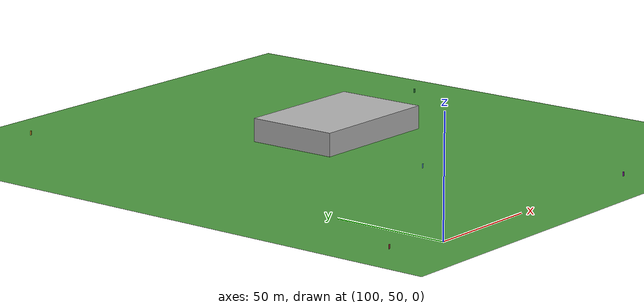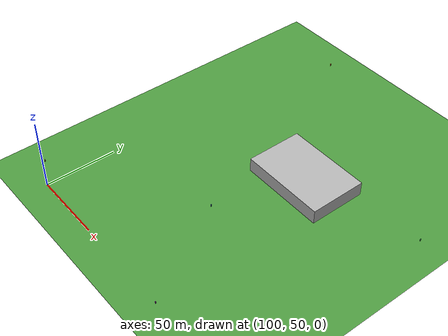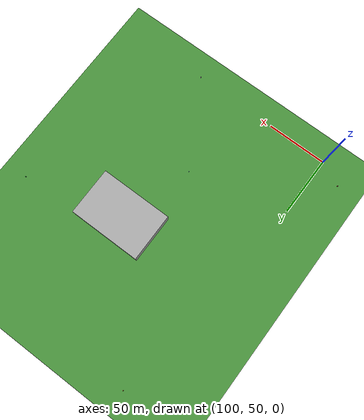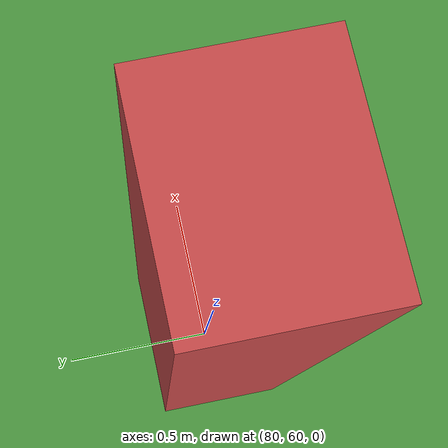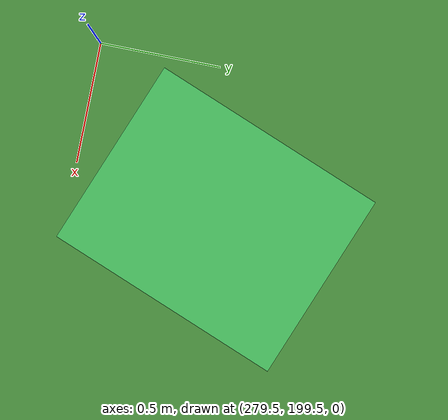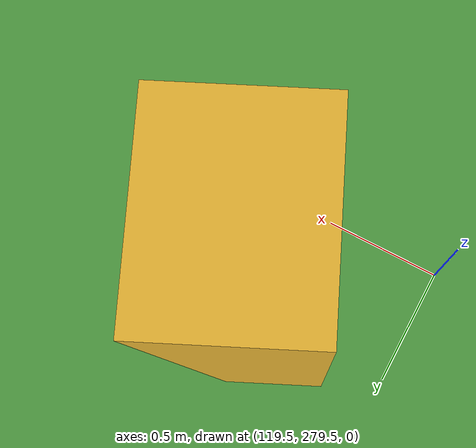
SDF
<?xml version="1.0" ?>
<sdf version="1.6">
  <world name="iiti_sar">

    <!-- ── Physics ── -->
    <physics type="ode">
      <real_time_update_rate>1000</real_time_update_rate>
      <max_step_size>0.001</max_step_size>
      <real_time_factor>1</real_time_factor>
    </physics>

    <!-- ── Lighting (Indore noon, June) ── -->
    <light name="sun" type="directional">
      <cast_shadows>true</cast_shadows>
      <pose>0 0 500 0 0 0</pose>
      <!-- Indore latitude ~22.5° N; solar altitude ~88° at noon June -->
      <direction>0.1 0.1 -1</direction>
      <diffuse>0.9 0.9 0.85 1</diffuse>
      <specular>0.2 0.2 0.2 1</specular>
    </light>

    <!-- ── Ground plane (400 m × 400 m, origin at SW corner) ── -->
    <model name="ground_plane">
      <static>true</static>
      <link name="link">
        <collision name="collision">
          <geometry>
            <plane>
              <normal>0 0 1</normal>
              <size>600 600</size>
            </plane>
          </geometry>
          <surface>
            <friction><ode><mu>100</mu><mu2>50</mu2></ode></friction>
          </surface>
        </collision>
        <visual name="visual">
          <cast_shadows>false</cast_shadows>
          <geometry>
            <plane>
              <normal>0 0 1</normal>
              <size>600 600</size>
            </plane>
          </geometry>
          <material>
            <script>
              <uri>file://media/materials/scripts/gazebo.material</uri>
              <name>Gazebo/Grass</name>
            </script>
          </material>
        </visual>
      </link>
    </model>

    <!-- H1 : (80, 60) near academic block -->
    <model name="human_1">
      <static>true</static>
      <pose>80 60 0.875 0 0 0</pose>
      <link name="link">
        <collision name="collision">
          <geometry><box><size>0.5 0.4 1.75</size></box></geometry>
        </collision>
        <visual name="visual">
          <geometry><box><size>0.5 0.4 1.75</size></box></geometry>
          <material>
            <ambient>0.8 0.3 0.3 1</ambient>
            <diffuse>0.8 0.3 0.3 1</diffuse>
          </material>
        </visual>
      </link>
    </model>

    <!-- H2 : (180, 120) open ground centre -->
    <model name="human_2">
      <static>true</static>
      <pose>180 120 0.875 0 0 0.5</pose>
      <link name="link">
        <collision name="collision">
          <geometry><box><size>0.5 0.4 1.75</size></box></geometry>
        </collision>
        <visual name="visual">
          <geometry><box><size>0.5 0.4 1.75</size></box></geometry>
          <material>
            <ambient>0.3 0.6 0.8 1</ambient>
            <diffuse>0.3 0.6 0.8 1</diffuse>
          </material>
        </visual>
      </link>
    </model>

    <!-- H3 : (280, 200) north-east area -->
    <model name="human_3">
      <static>true</static>
      <pose>280 200 0.875 0 0 1.2</pose>
      <link name="link">
        <collision name="collision">
          <geometry><box><size>0.5 0.4 1.75</size></box></geometry>
        </collision>
        <visual name="visual">
          <geometry><box><size>0.5 0.4 1.75</size></box></geometry>
          <material>
            <ambient>0.3 0.8 0.4 1</ambient>
            <diffuse>0.3 0.8 0.4 1</diffuse>
          </material>
        </visual>
      </link>
    </model>

    <!-- H4 : (120, 280) north-west area -->
    <model name="human_4">
      <static>true</static>
      <pose>120 280 0.875 0 0 2.0</pose>
      <link name="link">
        <collision name="collision">
          <geometry><box><size>0.5 0.4 1.75</size></box></geometry>
        </collision>
        <visual name="visual">
          <geometry><box><size>0.5 0.4 1.75</size></box></geometry>
          <material>
            <ambient>0.9 0.7 0.2 1</ambient>
            <diffuse>0.9 0.7 0.2 1</diffuse>
          </material>
        </visual>
      </link>
    </model>

    <!-- H5 : (220, 50) south-east corner -->
    <model name="human_5">
      <static>true</static>
      <pose>220 50 0.875 0 0 0.3</pose>
      <link name="link">
        <collision name="collision">
          <geometry><box><size>0.5 0.4 1.75</size></box></geometry>
        </collision>
        <visual name="visual">
          <geometry><box><size>0.5 0.4 1.75</size></box></geometry>
          <material>
            <ambient>0.7 0.2 0.8 1</ambient>
            <diffuse>0.7 0.2 0.8 1</diffuse>
          </material>
        </visual>
      </link>
    </model>

    <!-- ── Sparse building obstacles (academic block approximation) ── -->
    <model name="building_academic">
      <static>true</static>
      <pose>200 180 5 0 0 0</pose>
      <link name="link">
        <collision name="collision">
          <geometry><box><size>60 40 10</size></box></geometry>
        </collision>
        <visual name="visual">
          <geometry><box><size>60 40 10</size></box></geometry>
          <material>
            <ambient>0.6 0.6 0.6 1</ambient>
            <diffuse>0.7 0.7 0.7 1</diffuse>
          </material>
        </visual>
      </link>
    </model>

    <!-- ── Gazebo plugins ── -->
    <plugin name="gazebo_ros_state" filename="libgazebo_ros_state.so">
      <ros><namespace>/gazebo</namespace></ros>
      <update_rate>10.0</update_rate>
    </plugin>

  </world>
</sdf>
